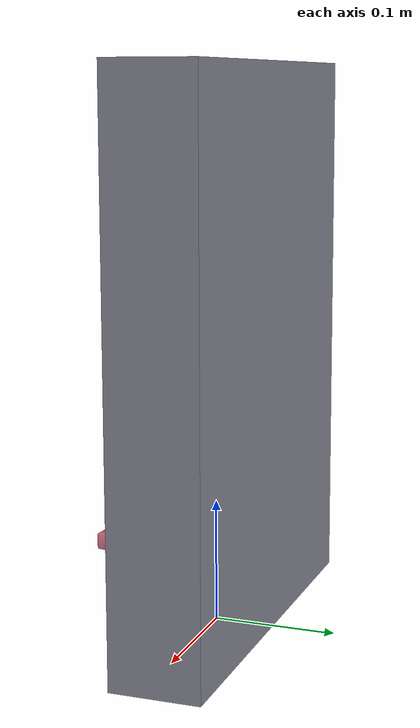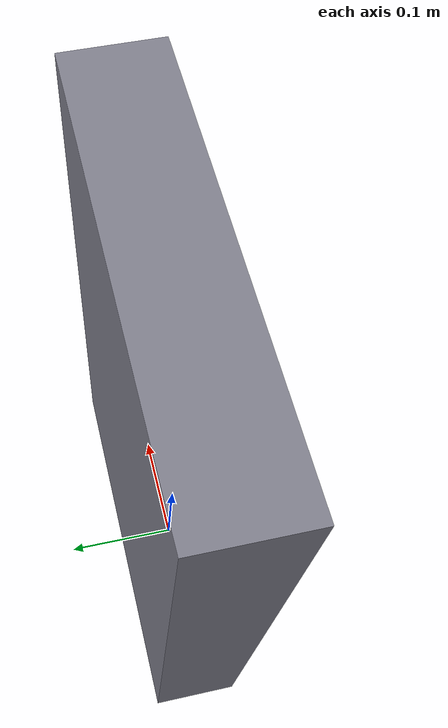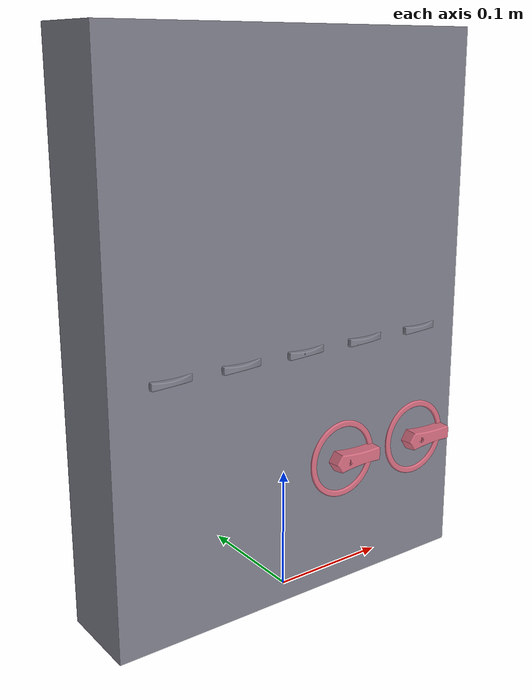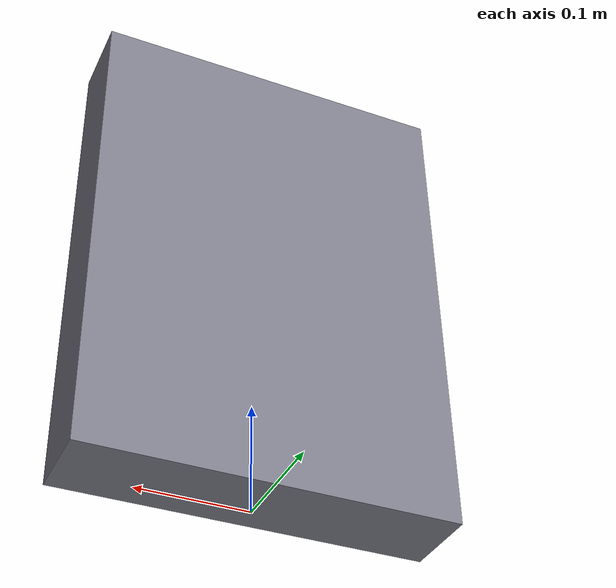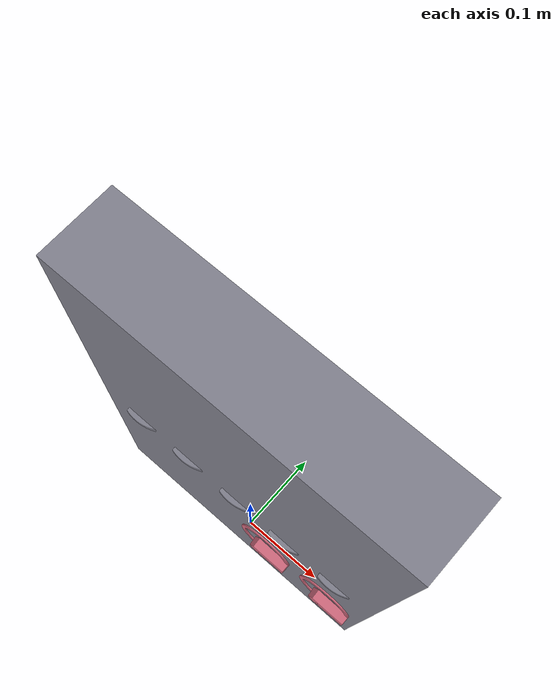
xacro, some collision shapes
<?xml version="1.0"?>
<robot name="indomitus_panel" xmlns:xacro="http://www.ros.org/wiki/xacro">

  <xacro:include filename="$(find panel_description)/urdf/panel_macro.xacro"/>

  <xacro:arg name="panel_x" default="0"/>
  <xacro:arg name="panel_y" default="0"/>
  <xacro:arg name="panel_z" default="0"/>
  <xacro:arg name="panel_yaw" default="0"/>

  <link name="world"/>

  <xacro:indomitus_panel parent_link="world">
    <origin xyz="0 0 0" rpy="0 0 0"/>
  </xacro:indomitus_panel>

</robot>

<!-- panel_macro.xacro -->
<robot xmlns:xacro="http://www.ros.org/wiki/xacro">

  <xacro:arg name="sim" default="false"/>

  <xacro:arg name="marker_id_top_left" default="11"/>
  <xacro:arg name="marker_id_top_right" default="13"/>
  <xacro:arg name="marker_id_bottom_left" default="14"/>

  <xacro:macro name="indomitus_panel" params="parent_link *origin">

    <xacro:property name="mesh_path" value="package://panel_description/meshes"/>
    <xacro:property name="stl_scale" value="0.001 0.001 0.001"/>

    <material name="panel_grey">
      <color rgba="0.5 0.5 0.55 1.0"/>
    </material>

    <material name="power_switch_pink">
      <color rgba="0.83 0.42 0.5 1.0"/>
    </material>

    <material name="breaker_white">
      <color rgba="0.92 0.92 0.92 1.0"/>
    </material>

    <material name="indicator_green">
      <color rgba="0.25 0.85 0.3 1.0"/>
    </material>

    <material name="socket_grey">
      <color rgba="0.65 0.65 0.68 1.0"/>
    </material>

    <material name="marker_black">
      <color rgba="0.03 0.03 0.03 1.0"/>
    </material>

    <xacro:macro name="dummy_inertia" params="mass">
      <inertial>
        <origin xyz="0 0 0" rpy="0 0 0"/>
        <mass value="${mass}"/>
        <inertia ixx="0.001" ixy="0.0" ixz="0.0" iyy="0.001" iyz="0.0" izz="0.001"/>
      </inertial>
    </xacro:macro>

    <!-- ===================== BASE PLATE ===================== -->
    <joint name="panel_mount_joint" type="fixed">
      <xacro:insert_block name="origin"/>
      <parent link="${parent_link}"/>
      <child link="panel_base_link"/>
    </joint>

    <link name="panel_base_link">
      <visual>
        <geometry><mesh filename="${mesh_path}/panel.stl" scale="${stl_scale}"/></geometry>
        <material name="panel_grey"/>
      </visual>
      <collision>
        <origin xyz="0 0.013 0.225" rpy="0 0 0"/>
        <geometry><box size="0.33 0.072 0.45"/></geometry>
      </collision>
      <xacro:dummy_inertia mass="3.0"/>
    </link>

    <!-- ===================== MAIN SWITCH 1 (main_switch.stl) ===================== -->
    <!-- Large toggle/rotary switch, ~65x65x29 mm. -->
    <joint name="panel_main_switch_1_joint" type="revolute">
      <parent link="panel_base_link"/>
      <child link="panel_main_switch_1_link"/>
      <origin xyz="0.042355 -0.0059 0.109905" rpy="${pi/2} ${-pi/2} 0"/>
      <axis xyz="0 0 1"/>
      <limit lower="${-pi/2}" upper="0" effort="5.0" velocity="2.0"/>
      <dynamics damping="0.05" friction="0.05"/>
    </joint>

    <link name="panel_main_switch_1_link">
      <visual>
        <geometry><mesh filename="${mesh_path}/main_switch.stl" scale="${stl_scale}"/></geometry>
        <material name="power_switch_pink"/>
      </visual>
      <collision>
        <geometry><mesh filename="${mesh_path}/main_switch.stl" scale="${stl_scale}"/></geometry>
      </collision>
      <xacro:dummy_inertia mass="0.05"/>
    </link>

    <!-- ===================== MAIN SWITCH 2 (main_switch.stl) ===================== -->
    <!-- Large toggle/rotary switch, ~65x65x29 mm. -->
    <joint name="panel_main_switch_2_joint" type="revolute">
      <parent link="panel_base_link"/>
      <child link="panel_main_switch_2_link"/>
      <origin xyz="0.122355 -0.0059 0.109905" rpy="${pi/2} ${-pi/2} 0"/>
      <axis xyz="0 0 1"/>
      <limit lower="${-pi/2}" upper="0" effort="5.0" velocity="2.0"/>
      <dynamics damping="0.05" friction="0.05"/>
    </joint>

    <link name="panel_main_switch_2_link">
      <visual>
        <geometry><mesh filename="${mesh_path}/main_switch.stl" scale="${stl_scale}"/></geometry>
        <material name="power_switch_pink"/>
      </visual>
      <collision>
        <geometry><mesh filename="${mesh_path}/main_switch.stl" scale="${stl_scale}"/></geometry>
      </collision>
      <xacro:dummy_inertia mass="0.05"/>
    </link>

    <!-- ===================== SWITCH 1 (switch.stl) ===================== -->
    <!-- Medium toggle switch, ~38x46x29 mm. -->
    <joint name="panel_switch_1_joint" type="revolute">
      <parent link="panel_base_link"/>
      <child link="panel_switch_1_link"/>
      <origin xyz="0.119578 0 0.20797" rpy="0 0 ${pi}"/>
      <axis xyz="0 1 0"/>
      <limit lower="${-pi/2}" upper="0" effort="5.0" velocity="2.0"/>
      <dynamics damping="0.05" friction="0.05"/>
    </joint>

    <link name="panel_switch_1_link">
      <visual>
        <geometry><mesh filename="${mesh_path}/switch.stl" scale="${stl_scale}"/></geometry>
        <material name="panel_grey"/>
      </visual>
      <collision>
        <geometry><mesh filename="${mesh_path}/switch.stl" scale="${stl_scale}"/></geometry>
      </collision>
      <xacro:dummy_inertia mass="0.03"/>
    </link>

    <!-- ===================== SWITCH 2 (switch.stl) ===================== -->
    <!-- Medium toggle switch, ~38x46x29 mm. -->
    <joint name="panel_switch_2_joint" type="revolute">
      <parent link="panel_base_link"/>
      <child link="panel_switch_2_link"/>
      <origin xyz="0.059789 0 0.20797" rpy="0 0 ${pi}"/>
      <axis xyz="0 1 0"/>
      <limit lower="${-pi/2}" upper="0" effort="5.0" velocity="2.0"/>
      <dynamics damping="0.05" friction="0.05"/>
    </joint>

    <link name="panel_switch_2_link">
      <visual>
        <geometry><mesh filename="${mesh_path}/switch.stl" scale="${stl_scale}"/></geometry>
        <material name="panel_grey"/>
      </visual>
      <collision>
        <geometry><mesh filename="${mesh_path}/switch.stl" scale="${stl_scale}"/></geometry>
      </collision>
      <xacro:dummy_inertia mass="0.03"/>
    </link>

    <!-- ===================== SWITCH 3 (switch.stl) ===================== -->
    <!-- Medium toggle switch, ~38x46x29 mm. -->
    <joint name="panel_switch_3_joint" type="revolute">
      <parent link="panel_base_link"/>
      <child link="panel_switch_3_link"/>
      <origin xyz="0 0 0.20797" rpy="0 0 ${pi}"/>
      <axis xyz="0 1 0"/>
      <limit lower="${-pi/2}" upper="0" effort="5.0" velocity="2.0"/>
      <dynamics damping="0.05" friction="0.05"/>
    </joint>

    <link name="panel_switch_3_link">
      <visual>
        <geometry><mesh filename="${mesh_path}/switch.stl" scale="${stl_scale}"/></geometry>
        <material name="panel_grey"/>
      </visual>
      <collision>
        <geometry><mesh filename="${mesh_path}/switch.stl" scale="${stl_scale}"/></geometry>
      </collision>
      <xacro:dummy_inertia mass="0.03"/>
    </link>

    <!-- ===================== SWITCH 4 (switch.stl) ===================== -->
    <!-- Medium toggle switch, ~38x46x29 mm. -->
    <joint name="panel_switch_4_joint" type="revolute">
      <parent link="panel_base_link"/>
      <child link="panel_switch_4_link"/>
      <origin xyz="-0.059789 0 0.20797" rpy="0 0 ${pi}"/>
      <axis xyz="0 1 0"/>
      <limit lower="${-pi/2}" upper="0" effort="5.0" velocity="2.0"/>
      <dynamics damping="0.05" friction="0.05"/>
    </joint>

    <link name="panel_switch_4_link">
      <visual>
        <geometry><mesh filename="${mesh_path}/switch.stl" scale="${stl_scale}"/></geometry>
        <material name="panel_grey"/>
      </visual>
      <collision>
        <geometry><mesh filename="${mesh_path}/switch.stl" scale="${stl_scale}"/></geometry>
      </collision>
      <xacro:dummy_inertia mass="0.03"/>
    </link>

    <!-- ===================== SWITCH 5 (switch.stl) ===================== -->
    <!-- Medium toggle switch, ~38x46x29 mm. -->
    <joint name="panel_switch_5_joint" type="revolute">
      <parent link="panel_base_link"/>
      <child link="panel_switch_5_link"/>
      <origin xyz="-0.119578 0 0.20797" rpy="0 0 ${pi}"/>
      <axis xyz="0 1 0"/>
      <limit lower="${-pi/2}" upper="0" effort="5.0" velocity="2.0"/>
      <dynamics damping="0.05" friction="0.05"/>
    </joint>

    <link name="panel_switch_5_link">
      <visual>
        <geometry><mesh filename="${mesh_path}/switch.stl" scale="${stl_scale}"/></geometry>
        <material name="panel_grey"/>
      </visual>
      <collision>
        <geometry><mesh filename="${mesh_path}/switch.stl" scale="${stl_scale}"/></geometry>
      </collision>
      <xacro:dummy_inertia mass="0.03"/>
    </link>

    <!-- ===================== BREAKER 1 (MCB_1P.stl) ===================== -->
    <!-- Single-pole miniature circuit breaker toggle, ~14x16x16 mm. -->
    <joint name="panel_breaker_1_joint" type="revolute">
      <parent link="panel_base_link"/>
      <child link="panel_breaker_1_link"/>
      <origin xyz="-0.150607 0.000926 0.305081" rpy="0 0 0"/>
      <axis xyz="1 0 0"/>
      <limit lower="0" upper="${pi/3}" effort="5.0" velocity="2.0"/>
      <dynamics damping="0.02" friction="0.02"/>
    </joint>

    <link name="panel_breaker_1_link">
      <visual>
        <geometry><mesh filename="${mesh_path}/MCB_1P.stl" scale="${stl_scale}"/></geometry>
        <material name="breaker_white"/>
      </visual>
      <collision>
        <geometry><mesh filename="${mesh_path}/MCB_1P.stl" scale="${stl_scale}"/></geometry>
      </collision>
      <xacro:dummy_inertia mass="0.01"/>
    </link>

    <!-- ===================== BREAKER 2 (MCB_1P.stl) ===================== -->
    <!-- Single-pole miniature circuit breaker toggle, ~14x16x16 mm. -->
    <joint name="panel_breaker_2_joint" type="revolute">
      <parent link="panel_base_link"/>
      <child link="panel_breaker_2_link"/>
      <origin xyz="-0.132607 0.000926 0.305081" rpy="0 0 0"/>
      <axis xyz="1 0 0"/>
      <limit lower="0" upper="${pi/3}" effort="5.0" velocity="2.0"/>
      <dynamics damping="0.02" friction="0.02"/>
    </joint>

    <link name="panel_breaker_2_link">
      <visual>
        <geometry><mesh filename="${mesh_path}/MCB_1P.stl" scale="${stl_scale}"/></geometry>
        <material name="breaker_white"/>
      </visual>
      <collision>
        <geometry><mesh filename="${mesh_path}/MCB_1P.stl" scale="${stl_scale}"/></geometry>
      </collision>
      <xacro:dummy_inertia mass="0.01"/>
    </link>

    <!-- ===================== BREAKER 3 (MCB_1P.stl) ===================== -->
    <!-- Single-pole miniature circuit breaker toggle, ~14x16x16 mm. -->
    <joint name="panel_breaker_3_joint" type="revolute">
      <parent link="panel_base_link"/>
      <child link="panel_breaker_3_link"/>
      <origin xyz="-0.114607 0.000926 0.305081" rpy="0 0 0"/>
      <axis xyz="1 0 0"/>
      <limit lower="0" upper="${pi/3}" effort="5.0" velocity="2.0"/>
      <dynamics damping="0.02" friction="0.02"/>
    </joint>

    <link name="panel_breaker_3_link">
      <visual>
        <geometry><mesh filename="${mesh_path}/MCB_1P.stl" scale="${stl_scale}"/></geometry>
        <material name="breaker_white"/>
      </visual>
      <collision>
        <geometry><mesh filename="${mesh_path}/MCB_1P.stl" scale="${stl_scale}"/></geometry>
      </collision>
      <xacro:dummy_inertia mass="0.01"/>
    </link>

    <!-- ===================== BREAKER 4 (MCB_1P.stl) ===================== -->
    <!-- Single-pole miniature circuit breaker toggle, ~14x16x16 mm. -->
    <joint name="panel_breaker_4_joint" type="revolute">
      <parent link="panel_base_link"/>
      <child link="panel_breaker_4_link"/>
      <origin xyz="-0.096607 0.000926 0.305081" rpy="0 0 0"/>
      <axis xyz="1 0 0"/>
      <limit lower="0" upper="${pi/3}" effort="5.0" velocity="2.0"/>
      <dynamics damping="0.02" friction="0.02"/>
    </joint>

    <link name="panel_breaker_4_link">
      <visual>
        <geometry><mesh filename="${mesh_path}/MCB_1P.stl" scale="${stl_scale}"/></geometry>
        <material name="breaker_white"/>
      </visual>
      <collision>
        <geometry><mesh filename="${mesh_path}/MCB_1P.stl" scale="${stl_scale}"/></geometry>
      </collision>
      <xacro:dummy_inertia mass="0.01"/>
    </link>

    <!-- ===================== BREAKER 5 (MCB_1P.stl) ===================== -->
    <!-- Single-pole miniature circuit breaker toggle, ~14x16x16 mm. -->
    <joint name="panel_breaker_5_joint" type="revolute">
      <parent link="panel_base_link"/>
      <child link="panel_breaker_5_link"/>
      <origin xyz="-0.078607 0.000926 0.305081" rpy="0 0 0"/>
      <axis xyz="1 0 0"/>
      <limit lower="0" upper="${pi/3}" effort="5.0" velocity="2.0"/>
      <dynamics damping="0.02" friction="0.02"/>
    </joint>

    <link name="panel_breaker_5_link">
      <visual>
        <geometry><mesh filename="${mesh_path}/MCB_1P.stl" scale="${stl_scale}"/></geometry>
        <material name="breaker_white"/>
      </visual>
      <collision>
        <geometry><mesh filename="${mesh_path}/MCB_1P.stl" scale="${stl_scale}"/></geometry>
      </collision>
      <xacro:dummy_inertia mass="0.01"/>
    </link>

    <!-- ===================== BREAKER 6 (MCB_1P.stl) ===================== -->
    <!-- Single-pole miniature circuit breaker toggle, ~14x16x16 mm. -->
    <joint name="panel_breaker_6_joint" type="revolute">
      <parent link="panel_base_link"/>
      <child link="panel_breaker_6_link"/>
      <origin xyz="-0.060607 0.000926 0.305081" rpy="0 0 0"/>
      <axis xyz="1 0 0"/>
      <limit lower="0" upper="${pi/3}" effort="5.0" velocity="2.0"/>
      <dynamics damping="0.02" friction="0.02"/>
    </joint>

    <link name="panel_breaker_6_link">
      <visual>
        <geometry><mesh filename="${mesh_path}/MCB_1P.stl" scale="${stl_scale}"/></geometry>
        <material name="breaker_white"/>
      </visual>
      <collision>
        <geometry><mesh filename="${mesh_path}/MCB_1P.stl" scale="${stl_scale}"/></geometry>
      </collision>
      <xacro:dummy_inertia mass="0.01"/>
    </link>

    <!-- ===================== BREAKER 7 (MCB_1P.stl) ===================== -->
    <!-- Single-pole miniature circuit breaker toggle, ~14x16x16 mm. -->
    <joint name="panel_breaker_7_joint" type="revolute">
      <parent link="panel_base_link"/>
      <child link="panel_breaker_7_link"/>
      <origin xyz="-0.042607 0.000926 0.305081" rpy="0 0 0"/>
      <axis xyz="1 0 0"/>
      <limit lower="0" upper="${pi/3}" effort="5.0" velocity="2.0"/>
      <dynamics damping="0.02" friction="0.02"/>
    </joint>

    <link name="panel_breaker_7_link">
      <visual>
        <geometry><mesh filename="${mesh_path}/MCB_1P.stl" scale="${stl_scale}"/></geometry>
        <material name="breaker_white"/>
      </visual>
      <collision>
        <geometry><mesh filename="${mesh_path}/MCB_1P.stl" scale="${stl_scale}"/></geometry>
      </collision>
      <xacro:dummy_inertia mass="0.01"/>
    </link>

    <!-- ===================== BREAKER 8 (MCB_1P.stl) ===================== -->
    <!-- Single-pole miniature circuit breaker toggle, ~14x16x16 mm. -->
    <joint name="panel_breaker_8_joint" type="revolute">
      <parent link="panel_base_link"/>
      <child link="panel_breaker_8_link"/>
      <origin xyz="-0.024607 0.000926 0.305081" rpy="0 0 0"/>
      <axis xyz="1 0 0"/>
      <limit lower="0" upper="${pi/3}" effort="5.0" velocity="2.0"/>
      <dynamics damping="0.02" friction="0.02"/>
    </joint>

    <link name="panel_breaker_8_link">
      <visual>
        <geometry><mesh filename="${mesh_path}/MCB_1P.stl" scale="${stl_scale}"/></geometry>
        <material name="breaker_white"/>
      </visual>
      <collision>
        <geometry><mesh filename="${mesh_path}/MCB_1P.stl" scale="${stl_scale}"/></geometry>
      </collision>
      <xacro:dummy_inertia mass="0.01"/>
    </link>

    <!-- ===================== BREAKER 9 (MCB_1P.stl) ===================== -->
    <!-- Single-pole miniature circuit breaker toggle, ~14x16x16 mm. -->
    <joint name="panel_breaker_9_joint" type="revolute">
      <parent link="panel_base_link"/>
      <child link="panel_breaker_9_link"/>
      <origin xyz="-0.006607 0.000926 0.305081" rpy="0 0 0"/>
      <axis xyz="1 0 0"/>
      <limit lower="0" upper="${pi/3}" effort="5.0" velocity="2.0"/>
      <dynamics damping="0.02" friction="0.02"/>
    </joint>

    <link name="panel_breaker_9_link">
      <visual>
        <geometry><mesh filename="${mesh_path}/MCB_1P.stl" scale="${stl_scale}"/></geometry>
        <material name="breaker_white"/>
      </visual>
      <collision>
        <geometry><mesh filename="${mesh_path}/MCB_1P.stl" scale="${stl_scale}"/></geometry>
      </collision>
      <xacro:dummy_inertia mass="0.01"/>
    </link>

    <!-- ===================== BREAKER 10 (MCB_1P.stl) ===================== -->
    <!-- Single-pole miniature circuit breaker toggle, ~14x16x16 mm. -->
    <joint name="panel_breaker_10_joint" type="revolute">
      <parent link="panel_base_link"/>
      <child link="panel_breaker_10_link"/>
      <origin xyz="0.011393 0.000926 0.305081" rpy="0 0 0"/>
      <axis xyz="1 0 0"/>
      <limit lower="0" upper="${pi/3}" effort="5.0" velocity="2.0"/>
      <dynamics damping="0.02" friction="0.02"/>
    </joint>

    <link name="panel_breaker_10_link">
      <visual>
        <geometry><mesh filename="${mesh_path}/MCB_1P.stl" scale="${stl_scale}"/></geometry>
        <material name="breaker_white"/>
      </visual>
      <collision>
        <geometry><mesh filename="${mesh_path}/MCB_1P.stl" scale="${stl_scale}"/></geometry>
      </collision>
      <xacro:dummy_inertia mass="0.01"/>
    </link>

    <!-- ===================== BREAKER 11 (MCB_1P.stl) ===================== -->
    <!-- Single-pole miniature circuit breaker toggle, ~14x16x16 mm. -->
    <joint name="panel_breaker_11_joint" type="revolute">
      <parent link="panel_base_link"/>
      <child link="panel_breaker_11_link"/>
      <origin xyz="0.029393 0.000926 0.305081" rpy="0 0 0"/>
      <axis xyz="1 0 0"/>
      <limit lower="0" upper="${pi/3}" effort="5.0" velocity="2.0"/>
      <dynamics damping="0.02" friction="0.02"/>
    </joint>

    <link name="panel_breaker_11_link">
      <visual>
        <geometry><mesh filename="${mesh_path}/MCB_1P.stl" scale="${stl_scale}"/></geometry>
        <material name="breaker_white"/>
      </visual>
      <collision>
        <geometry><mesh filename="${mesh_path}/MCB_1P.stl" scale="${stl_scale}"/></geometry>
      </collision>
      <xacro:dummy_inertia mass="0.01"/>
    </link>

    <!-- ===================== BREAKER 12 (MCB_1P.stl) ===================== -->
    <!-- Single-pole miniature circuit breaker toggle, ~14x16x16 mm. -->
    <joint name="panel_breaker_12_joint" type="revolute">
      <parent link="panel_base_link"/>
      <child link="panel_breaker_12_link"/>
      <origin xyz="0.047393 0.000926 0.305081" rpy="0 0 0"/>
      <axis xyz="1 0 0"/>
      <limit lower="0" upper="${pi/3}" effort="5.0" velocity="2.0"/>
      <dynamics damping="0.02" friction="0.02"/>
    </joint>

    <link name="panel_breaker_12_link">
      <visual>
        <geometry><mesh filename="${mesh_path}/MCB_1P.stl" scale="${stl_scale}"/></geometry>
        <material name="breaker_white"/>
      </visual>
      <collision>
        <geometry><mesh filename="${mesh_path}/MCB_1P.stl" scale="${stl_scale}"/></geometry>
      </collision>
      <xacro:dummy_inertia mass="0.01"/>
    </link>

    <!-- ===================== BREAKER 13 (MCB_1P.stl) ===================== -->
    <!-- Single-pole miniature circuit breaker toggle, ~14x16x16 mm. -->
    <joint name="panel_breaker_13_joint" type="revolute">
      <parent link="panel_base_link"/>
      <child link="panel_breaker_13_link"/>
      <origin xyz="0.065393 0.000926 0.305081" rpy="0 0 0"/>
      <axis xyz="1 0 0"/>
      <limit lower="0" upper="${pi/3}" effort="5.0" velocity="2.0"/>
      <dynamics damping="0.02" friction="0.02"/>
    </joint>

    <link name="panel_breaker_13_link">
      <visual>
        <geometry><mesh filename="${mesh_path}/MCB_1P.stl" scale="${stl_scale}"/></geometry>
        <material name="breaker_white"/>
      </visual>
      <collision>
        <geometry><mesh filename="${mesh_path}/MCB_1P.stl" scale="${stl_scale}"/></geometry>
      </collision>
      <xacro:dummy_inertia mass="0.01"/>
    </link>

    <!-- ===================== BREAKER 14 (MCB_1P.stl) ===================== -->
    <!-- Single-pole miniature circuit breaker toggle, ~14x16x16 mm. -->
    <joint name="panel_breaker_14_joint" type="revolute">
      <parent link="panel_base_link"/>
      <child link="panel_breaker_14_link"/>
      <origin xyz="0.083393 0.000926 0.305081" rpy="0 0 0"/>
      <axis xyz="1 0 0"/>
      <limit lower="0" upper="${pi/3}" effort="5.0" velocity="2.0"/>
      <dynamics damping="0.02" friction="0.02"/>
    </joint>

    <link name="panel_breaker_14_link">
      <visual>
        <geometry><mesh filename="${mesh_path}/MCB_1P.stl" scale="${stl_scale}"/></geometry>
        <material name="breaker_white"/>
      </visual>
      <collision>
        <geometry><mesh filename="${mesh_path}/MCB_1P.stl" scale="${stl_scale}"/></geometry>
      </collision>
      <xacro:dummy_inertia mass="0.01"/>
    </link>

    <!-- ===================== BREAKER 15 (MCB_1P.stl) ===================== -->
    <!-- Single-pole miniature circuit breaker toggle, ~14x16x16 mm. -->
    <joint name="panel_breaker_15_joint" type="revolute">
      <parent link="panel_base_link"/>
      <child link="panel_breaker_15_link"/>
      <origin xyz="0.101393 0.000926 0.305081" rpy="0 0 0"/>
      <axis xyz="1 0 0"/>
      <limit lower="0" upper="${pi/3}" effort="5.0" velocity="2.0"/>
      <dynamics damping="0.02" friction="0.02"/>
    </joint>

    <link name="panel_breaker_15_link">
      <visual>
        <geometry><mesh filename="${mesh_path}/MCB_1P.stl" scale="${stl_scale}"/></geometry>
        <material name="breaker_white"/>
      </visual>
      <collision>
        <geometry><mesh filename="${mesh_path}/MCB_1P.stl" scale="${stl_scale}"/></geometry>
      </collision>
      <xacro:dummy_inertia mass="0.01"/>
    </link>

    <!-- ===================== BREAKER 16 (MCB_1P.stl) ===================== -->
    <!-- Single-pole miniature circuit breaker toggle, ~14x16x16 mm. -->
    <joint name="panel_breaker_16_joint" type="revolute">
      <parent link="panel_base_link"/>
      <child link="panel_breaker_16_link"/>
      <origin xyz="0.119393 0.000926 0.305081" rpy="0 0 0"/>
      <axis xyz="1 0 0"/>
      <limit lower="0" upper="${pi/3}" effort="5.0" velocity="2.0"/>
      <dynamics damping="0.02" friction="0.02"/>
    </joint>

    <link name="panel_breaker_16_link">
      <visual>
        <geometry><mesh filename="${mesh_path}/MCB_1P.stl" scale="${stl_scale}"/></geometry>
        <material name="breaker_white"/>
      </visual>
      <collision>
        <geometry><mesh filename="${mesh_path}/MCB_1P.stl" scale="${stl_scale}"/></geometry>
      </collision>
      <xacro:dummy_inertia mass="0.01"/>
    </link>

    <!-- ===================== BREAKER 17 (MCB_1P.stl) ===================== -->
    <!-- Single-pole miniature circuit breaker toggle, ~14x16x16 mm. -->
    <joint name="panel_breaker_17_joint" type="revolute">
      <parent link="panel_base_link"/>
      <child link="panel_breaker_17_link"/>
      <origin xyz="0.137393 0.000926 0.305081" rpy="0 0 0"/>
      <axis xyz="1 0 0"/>
      <limit lower="0" upper="${pi/3}" effort="5.0" velocity="2.0"/>
      <dynamics damping="0.02" friction="0.02"/>
    </joint>

    <link name="panel_breaker_17_link">
      <visual>
        <geometry><mesh filename="${mesh_path}/MCB_1P.stl" scale="${stl_scale}"/></geometry>
        <material name="breaker_white"/>
      </visual>
      <collision>
        <geometry><mesh filename="${mesh_path}/MCB_1P.stl" scale="${stl_scale}"/></geometry>
      </collision>
      <xacro:dummy_inertia mass="0.01"/>
    </link>

    <xacro:macro name="panel_indicator" params="suffix x z">
      <joint name="panel_indicator_${suffix}_joint" type="fixed">
        <parent link="panel_base_link"/>
        <child link="panel_indicator_${suffix}_link"/>
        <origin xyz="${x} -0.003 ${z}" rpy="0 0 0"/>
      </joint>
      <link name="panel_indicator_${suffix}_link">
        <visual>
          <geometry><box size="0.022 0.004 0.014"/></geometry>
          <material name="indicator_green"/>
        </visual>
        <collision>
          <geometry><box size="0.022 0.004 0.014"/></geometry>
        </collision>
        <xacro:dummy_inertia mass="0.001"/>
      </link>
    </xacro:macro>

    <xacro:panel_indicator suffix="1" x="-0.119578" z="0.365"/>
    <xacro:panel_indicator suffix="2" x="-0.059789" z="0.365"/>
    <xacro:panel_indicator suffix="3" x="0"         z="0.365"/>
    <xacro:panel_indicator suffix="4" x="0.059789"  z="0.365"/>
    <xacro:panel_indicator suffix="5" x="0.119578"  z="0.365"/>

    <xacro:macro name="panel_socket" params="suffix x z">
      <joint name="panel_socket_${suffix}_joint" type="fixed">
        <parent link="panel_base_link"/>
        <child link="panel_socket_${suffix}_link"/>
        <origin xyz="${x} -0.006 ${z}" rpy="${pi/2} 0 0"/>
      </joint>
      <link name="panel_socket_${suffix}_link">
        <visual>
          <geometry><cylinder radius="0.012" length="0.012"/></geometry>
          <material name="socket_grey"/>
        </visual>
        <collision>
          <geometry><cylinder radius="0.012" length="0.012"/></geometry>
        </collision>
        <xacro:dummy_inertia mass="0.005"/>
      </link>
    </xacro:macro>

    <xacro:panel_socket suffix="1" x="-0.10" z="0.109905"/>
    <xacro:panel_socket suffix="2" x="-0.06" z="0.109905"/>

    <xacro:macro name="panel_marker" params="suffix marker_id x z">
      <joint name="panel_marker_${suffix}_joint" type="fixed">
        <parent link="panel_base_link"/>
        <child link="panel_marker_${suffix}_link"/>
        <origin xyz="${x} -0.003 ${z}" rpy="0 0 0"/>
      </joint>
      <link name="panel_marker_${suffix}_link">
        <visual>
          <geometry><box size="0.04 0.002 0.04"/></geometry>
          <material name="marker_black"/>
        </visual>
        <visual>
          <geometry><mesh filename="${mesh_path}/aruco_tags/marker_${marker_id}.obj"/></geometry>
        </visual>
        <collision>
          <geometry><box size="0.04 0.002 0.04"/></geometry>
        </collision>
        <xacro:dummy_inertia mass="0.001"/>
      </link>
    </xacro:macro>

    <xacro:panel_marker suffix="top_left"    marker_id="$(arg marker_id_top_left)"    x="-0.135" z="0.415"/>
    <xacro:panel_marker suffix="top_right"   marker_id="$(arg marker_id_top_right)"   x="0.135"  z="0.415"/>
    <xacro:panel_marker suffix="bottom_left" marker_id="$(arg marker_id_bottom_left)" x="-0.135" z="0.035"/>

    <xacro:if value="$(arg sim)">
      <gazebo reference="panel_base_link">
        <gravity>false</gravity>
      </gazebo>

      <gazebo reference="panel_base_link">
        <visual>
          <material>
            <ambient>0.5 0.5 0.55 1.0</ambient>
            <diffuse>0.5 0.5 0.55 1.0</diffuse>
            <specular>0.2 0.2 0.2 1.0</specular>
          </material>
        </visual>
      </gazebo>

      <!-- No ros2_control block: publishes joint states for the passive
           switch/breaker joints purely from physics simulation. -->
      <gazebo>
        <plugin filename="gz-sim-joint-state-publisher-system"
                name="gz::sim::systems::JointStatePublisher">
        </plugin>
      </gazebo>
    </xacro:if>

  </xacro:macro>
</robot>
